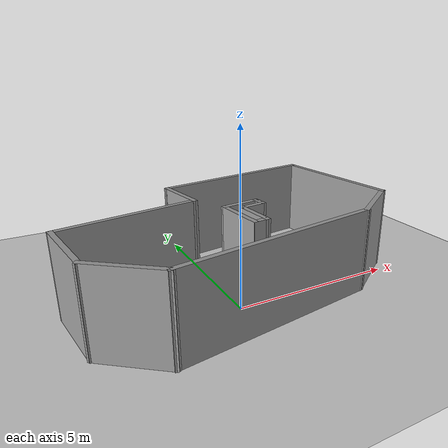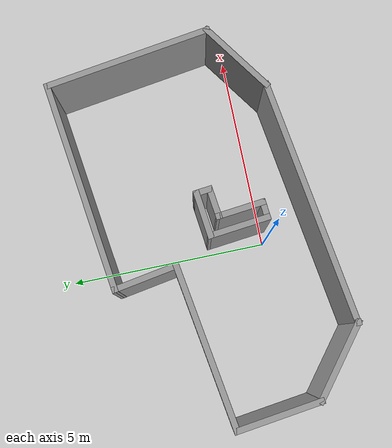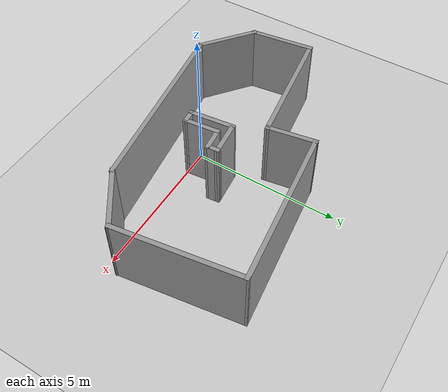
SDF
<sdf version="1.7">
 <world name="default">
  <light name="sun" type="directional">
   <pose>0 0 10 0 -0 0</pose>
   <diffuse>0.8 0.8 0.8 1</diffuse>
   <specular>0.2 0.2 0.2 1</specular>
   <attenuation>
    <range>1000</range>
    <constant>0.9</constant>
    <linear>0.01</linear>
    <quadratic>0.001</quadratic>
   </attenuation>
   <direction>-0.5 0.1 -0.9</direction>
   <spot><inner_angle>0</inner_angle><outer_angle>0</outer_angle><falloff>0</falloff></spot>
  </light>
  <model name="ground_plane">
   <static>1</static>
   <link name="link">
    <collision name="collision">
     <geometry><plane><normal>0 0 1</normal><size>100 100</size></plane></geometry>
     <surface><friction><ode><mu>100</mu><mu2>50</mu2></ode></friction></surface>
    </collision>
    <visual name="visual">
     <cast_shadows>0</cast_shadows>
     <geometry><plane><normal>0 0 1</normal><size>100 100</size></plane></geometry>
     <material>
      <script><uri>file://media/materials/scripts/gazebo.material</uri><name>Gazebo/Grey</name></script>
     </material>
    </visual>
   </link>
  </model>
  <gravity>0 0 -9.8</gravity>
  <magnetic_field>6e-06 2.3e-05 -4.2e-05</magnetic_field>
  <atmosphere type="adiabatic"/>
  <physics type="ode">
   <max_step_size>0.001</max_step_size>
   <real_time_factor>1</real_time_factor>
   <real_time_update_rate>1000</real_time_update_rate>
  </physics>
  <scene><ambient>0.4 0.4 0.4 1</ambient><background>0.7 0.7 0.7 1</background><shadows>1</shadows></scene>
  <audio><device>default</device></audio>
  <spherical_coordinates>
   <surface_model>EARTH_WGS84</surface_model>
   <latitude_deg>0</latitude_deg>
   <longitude_deg>0</longitude_deg>
   <elevation>0</elevation>
   <heading_deg>0</heading_deg>
  </spherical_coordinates>
  <model name="testmap">
   <pose>0.45199 1.43899 0 0 -0 0</pose>
   <link name="Wall_0">
    <collision name="Wall_0_Collision">
     <geometry><box><size>6.18433 0.15 2.5</size></box></geometry>
     <pose>0 0 1.25 0 -0 0</pose>
    </collision>
    <visual name="Wall_0_Visual">
     <pose>0 0 1.25 0 -0 0</pose>
     <geometry><box><size>6.18433 0.15 2.5</size></box></geometry>
     <material>
      <script><uri>file://media/materials/scripts/gazebo.material</uri><name>Gazebo/Grey</name></script>
      <ambient>1 1 1 1</ambient>
     </material>
     <meta><layer>0</layer></meta>
    </visual>
    <pose>0.130232 -2.58011 0 0 -0 0.142074</pose>
   </link>
   <link name="Wall_1">
    <collision name="Wall_1_Collision">
     <geometry><box><size>2.13417 0.15 2.5</size></box></geometry>
     <pose>0 0 1.25 0 -0 0</pose>
    </collision>
    <visual name="Wall_1_Visual">
     <pose>0 0 1.25 0 -0 0</pose>
     <geometry><box><size>2.13417 0.15 2.5</size></box></geometry>
     <material>
      <script><uri>file://media/materials/scripts/gazebo.material</uri><name>Gazebo/Grey</name></script>
      <ambient>1 1 1 1</ambient>
     </material>
     <meta><layer>0</layer></meta>
    </visual>
    <pose>3.93363 -1.58956 0 0 -0 0.603858</pose>
   </link>
   <link name="Wall_2">
    <collision name="Wall_2_Collision">
     <geometry><box><size>4.26555 0.15 2.5</size></box></geometry>
     <pose>0 0 1.25 0 -0 0</pose>
    </collision>
    <visual name="Wall_2_Visual">
     <pose>0 0 1.25 0 -0 0</pose>
     <geometry><box><size>4.26555 0.15 2.5</size></box></geometry>
     <material>
      <script><uri>file://media/materials/scripts/gazebo.material</uri><name>Gazebo/Grey</name></script>
      <ambient>1 1 1 1</ambient>
     </material>
     <meta><layer>0</layer></meta>
    </visual>
    <pose>4.45514 1.01026 0 0 -0 1.71471</pose>
   </link>
   <link name="Wall_3">
    <collision name="Wall_3_Collision">
     <geometry><box><size>5.34863 0.15 2.5</size></box></geometry>
     <pose>0 0 1.25 0 -0 0</pose>
    </collision>
    <visual name="Wall_3_Visual">
     <pose>0 0 1.25 0 -0 0</pose>
     <geometry><box><size>5.34863 0.15 2.5</size></box></geometry>
     <material>
      <script><uri>file://media/materials/scripts/gazebo.material</uri><name>Gazebo/Grey</name></script>
      <ambient>1 1 1 1</ambient>
     </material>
     <meta><layer>0</layer></meta>
    </visual>
    <pose>1.58095 2.72294 0 0 -0 -3.01669</pose>
   </link>
   <link name="Wall_4">
    <collision name="Wall_4_Collision">
     <geometry><box><size>1.69768 0.15 2.5</size></box></geometry>
     <pose>0 0 1.25 0 -0 0</pose>
    </collision>
    <visual name="Wall_4_Visual">
     <pose>0 0 1.25 0 -0 0</pose>
     <geometry><box><size>1.69768 0.15 2.5</size></box></geometry>
     <material>
      <script><uri>file://media/materials/scripts/gazebo.material</uri><name>Gazebo/Grey</name></script>
      <ambient>1 1 1 1</ambient>
     </material>
     <meta><layer>0</layer></meta>
    </visual>
    <pose>-0.8709 1.6358 0 0 -0 -1.40565</pose>
   </link>
   <link name="Wall_5">
    <collision name="Wall_5_Collision">
     <geometry><box><size>4.22018 0.15 2.5</size></box></geometry>
     <pose>0 0 1.25 0 -0 0</pose>
    </collision>
    <visual name="Wall_5_Visual">
     <pose>0 0 1.25 0 -0 0</pose>
     <geometry><box><size>4.22018 0.15 2.5</size></box></geometry>
     <material>
      <script><uri>file://media/materials/scripts/gazebo.material</uri><name>Gazebo/Grey</name></script>
      <ambient>1 1 1 1</ambient>
     </material>
     <meta><layer>0</layer></meta>
    </visual>
    <pose>-2.75652 0.572335 0 0 -0 -2.99356</pose>
   </link>
   <link name="Wall_6">
    <collision name="Wall_6_Collision">
     <geometry><box><size>2.21818 0.15 2.5</size></box></geometry>
     <pose>0 0 1.25 0 -0 0</pose>
    </collision>
    <visual name="Wall_6_Visual">
     <pose>0 0 1.25 0 -0 0</pose>
     <geometry><box><size>2.21818 0.15 2.5</size></box></geometry>
     <material>
      <script><uri>file://media/materials/scripts/gazebo.material</uri><name>Gazebo/Grey</name></script>
      <ambient>1 1 1 1</ambient>
     </material>
     <meta><layer>0</layer></meta>
    </visual>
    <pose>-4.63861 -0.753609 0 0 -0 -1.44403</pose>
   </link>
   <link name="Wall_7">
    <collision name="Wall_7_Collision">
     <geometry><box><size>2.16989 0.15 2.5</size></box></geometry>
     <pose>0 0 1.25 0 -0 0</pose>
    </collision>
    <visual name="Wall_7_Visual">
     <pose>0 0 1.25 0 -0 0</pose>
     <geometry><box><size>2.16989 0.15 2.5</size></box></geometry>
     <material>
      <script><uri>file://media/materials/scripts/gazebo.material</uri><name>Gazebo/Grey</name></script>
      <ambient>1 1 1 1</ambient>
     </material>
     <meta><layer>0</layer></meta>
    </visual>
    <pose>-3.71339 -2.40292 0 0 -0 -0.66541</pose>
   </link>
   <link name="Wall_8">
    <collision name="Wall_8_Collision">
     <geometry><box><size>0.15 0.15 2.5</size></box></geometry>
     <pose>0 0 1.25 0 -0 0</pose>
    </collision>
    <visual name="Wall_8_Visual">
     <pose>0 0 1.25 0 -0 0</pose>
     <geometry><box><size>0.15 0.15 2.5</size></box></geometry>
     <material>
      <script><uri>file://media/materials/scripts/gazebo.material</uri><name>Gazebo/Grey</name></script>
      <ambient>1 1 1 1</ambient>
     </material>
     <meta><layer>0</layer></meta>
    </visual>
    <pose>-2.9189 -3.02644 0 0 -0 0</pose>
   </link>
   <static>1</static>
  </model>
  <model name="Untitled2">
   <pose>0.708942 0.723343 0 0 -0 0</pose>
   <link name="Wall_10">
    <collision name="Wall_10_Collision">
     <geometry><box><size>1.57238 0.15 2.5</size></box></geometry>
     <pose>0 0 1.25 0 -0 0</pose>
    </collision>
    <visual name="Wall_10_Visual">
     <pose>0 0 1.25 0 -0 0</pose>
     <geometry><box><size>1.57238 0.15 2.5</size></box></geometry>
     <material>
      <script><uri>file://media/materials/scripts/gazebo.material</uri><name>Gazebo/Grey</name></script>
      <ambient>1 1 1 1</ambient>
     </material>
     <meta><layer>0</layer></meta>
    </visual>
    <pose>-0.392122 -0.057599 0 0 -0 1.6761</pose>
   </link>
   <link name="Wall_11">
    <collision name="Wall_11_Collision">
     <geometry><box><size>1.21423 0.15 2.5</size></box></geometry>
     <pose>0 0 1.25 0 -0 0</pose>
    </collision>
    <visual name="Wall_11_Visual">
     <pose>0 0 1.25 0 -0 0</pose>
     <geometry><box><size>1.21423 0.15 2.5</size></box></geometry>
     <material>
      <script><uri>file://media/materials/scripts/gazebo.material</uri><name>Gazebo/Grey</name></script>
      <ambient>1 1 1 1</ambient>
     </material>
     <meta><layer>0</layer></meta>
    </visual>
    <pose>0.062128 0.707151 0 0 -0 0.108271</pose>
   </link>
   <link name="Wall_12">
    <collision name="Wall_12_Collision">
     <geometry><box><size>0.473843 0.15 2.5</size></box></geometry>
     <pose>0 0 1.25 0 -0 0</pose>
    </collision>
    <visual name="Wall_12_Visual">
     <pose>0 0 1.25 0 -0 0</pose>
     <geometry><box><size>0.473843 0.15 2.5</size></box></geometry>
     <material>
      <script><uri>file://media/materials/scripts/gazebo.material</uri><name>Gazebo/Grey</name></script>
      <ambient>1 1 1 1</ambient>
     </material>
     <meta><layer>0</layer></meta>
    </visual>
    <pose>0.608378 0.603651 0 0 -0 -1.46406</pose>
   </link>
   <link name="Wall_13">
    <collision name="Wall_13_Collision">
     <geometry><box><size>0.833259 0.15 2.5</size></box></geometry>
     <pose>0 0 1.25 0 -0 0</pose>
    </collision>
    <visual name="Wall_13_Visual">
     <pose>0 0 1.25 0 -0 0</pose>
     <geometry><box><size>0.833259 0.15 2.5</size></box></geometry>
     <material>
      <script><uri>file://media/materials/scripts/gazebo.material</uri><name>Gazebo/Grey</name></script>
      <ambient>1 1 1 1</ambient>
     </material>
     <meta><layer>0</layer></meta>
    </visual>
    <pose>0.286378 0.402401 0 0 -0 -3.0235</pose>
   </link>
   <link name="Wall_14">
    <collision name="Wall_14_Collision">
     <geometry><box><size>1.24854 0.15 2.5</size></box></geometry>
     <pose>0 0 1.25 0 -0 0</pose>
    </collision>
    <visual name="Wall_14_Visual">
     <pose>0 0 1.25 0 -0 0</pose>
     <geometry><box><size>1.24854 0.15 2.5</size></box></geometry>
     <material>
      <script><uri>file://media/materials/scripts/gazebo.material</uri><name>Gazebo/Grey</name></script>
      <ambient>1 1 1 1</ambient>
     </material>
     <meta><layer>0</layer></meta>
    </visual>
    <pose>0.004628 -0.184099 0 0 -0 -1.46592</pose>
   </link>
   <link name="Wall_15">
    <collision name="Wall_15_Collision">
     <geometry><box><size>0.519614 0.15 2.5</size></box></geometry>
     <pose>0 0 1.25 0 -0 0</pose>
    </collision>
    <visual name="Wall_15_Visual">
     <pose>0 0 1.25 0 -0 0</pose>
     <geometry><box><size>0.519614 0.15 2.5</size></box></geometry>
     <material>
      <script><uri>file://media/materials/scripts/gazebo.material</uri><name>Gazebo/Grey</name></script>
      <ambient>1 1 1 1</ambient>
     </material>
     <meta><layer>0</layer></meta>
    </visual>
    <pose>-0.121872 -0.747599 0 0 -0 -3.04812</pose>
   </link>
   <static>1</static>
  </model>
 </world>
</sdf>
